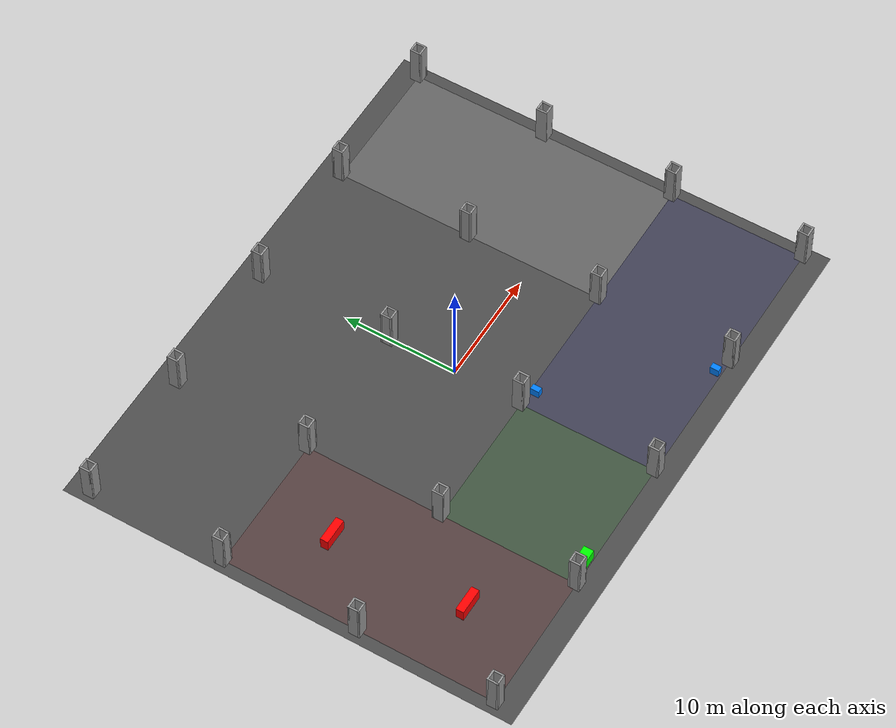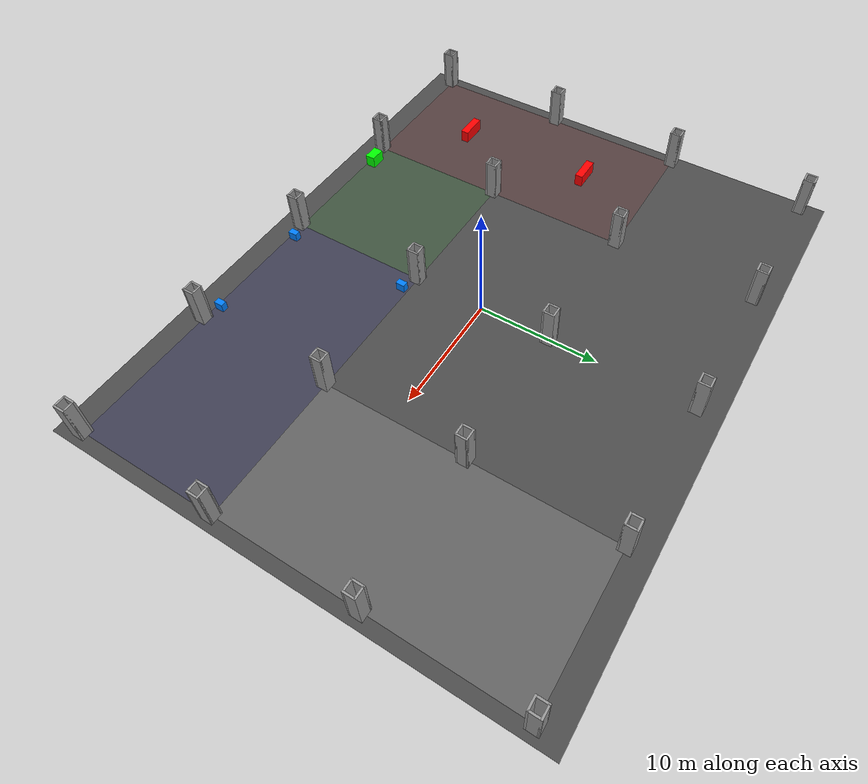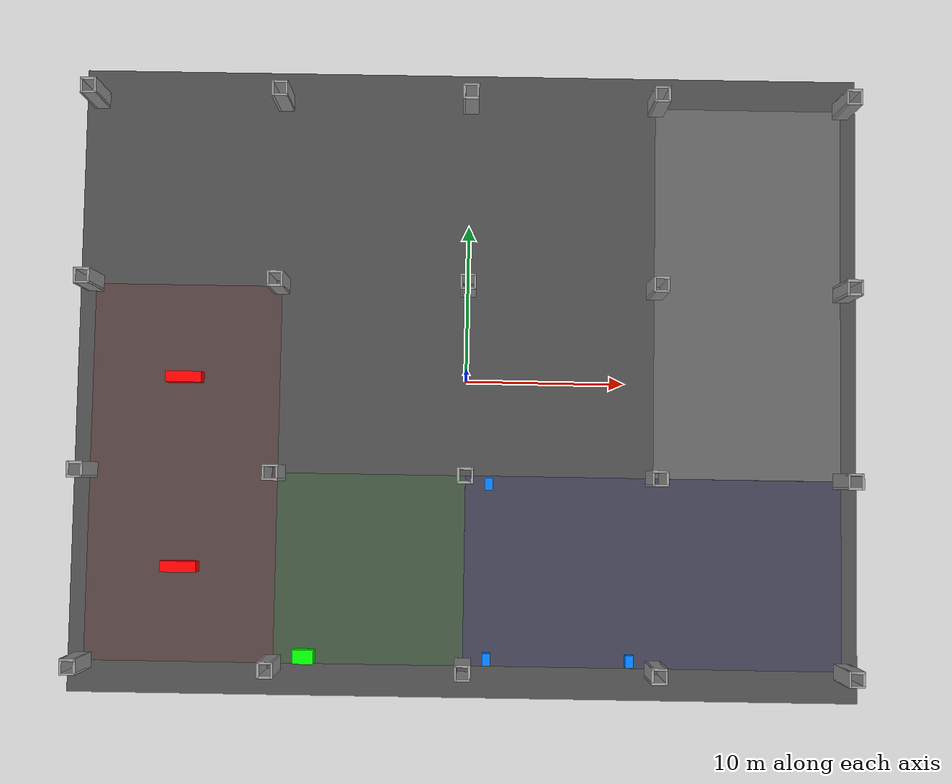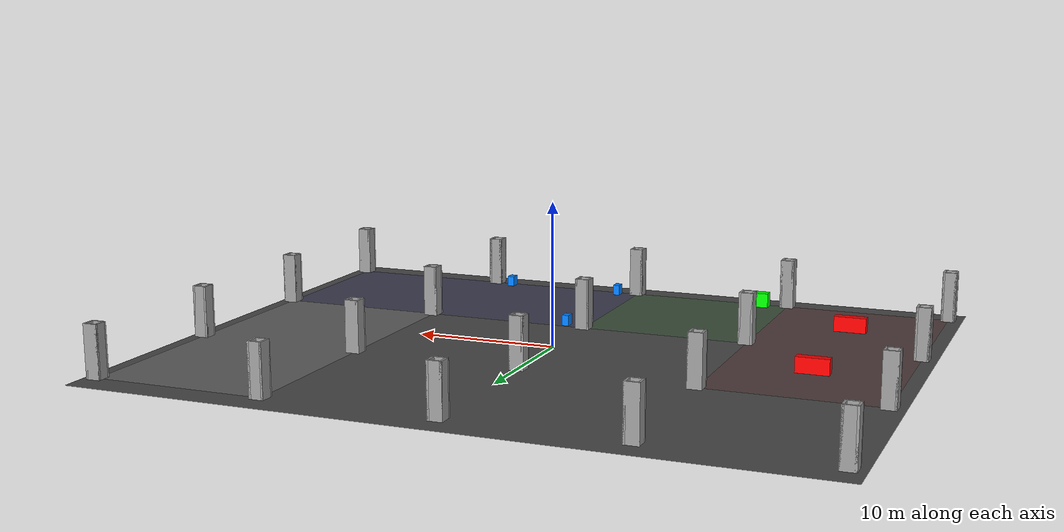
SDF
<sdf version="1.6">
 <world name="anchor_plant_world">
  <plugin filename="ignition-gazebo-collada-world-exporter-system" name="ignition::gazebo::systems::ColladaWorldExporter"/>
  <scene><ambient>0.4 0.4 0.4 1</ambient><background>0.7 0.7 0.7 1</background><shadows>1</shadows></scene>
  <gravity>0 0 -9.8</gravity>
  <magnetic_field>6e-06 2.3e-05 -4.2e-05</magnetic_field>
  <atmosphere type="adiabatic"/>
  <physics name="default_physics" default="0" type="ode">
   <max_step_size>0.001</max_step_size>
   <real_time_factor>1</real_time_factor>
   <real_time_update_rate>1000</real_time_update_rate>
  </physics>
  <light type="directional" name="sun">
   <pose>0 0 10 0 0 0</pose>
   <diffuse>0.8 0.8 0.8 1</diffuse>
   <specular>0.2 0.2 0.2 1</specular>
   <attenuation>
    <range>1000</range>
    <constant>0.9</constant>
    <linear>0.01</linear>
    <quadratic>0.0001</quadratic>
   </attenuation>
   <direction>-0.5 0.1 -0.9</direction>
  </light>
  <include><uri>model://ground_plane_anchor</uri></include>
  <include>
   <uri>model://ground_plane_ws1</uri>
   <static>1</static>
   <pose>-18 -6 0.001 0 0 0</pose>
   <name>ws_1_area</name>
  </include>
  <include>
   <uri>model://ground_plane_ws2</uri>
   <static>1</static>
   <pose>-6 -12 0.001 0 0 0</pose>
   <name>ws_2_area</name>
  </include>
  <include>
   <uri>model://ground_plane_ws3</uri>
   <static>1</static>
   <pose>12 -12 0.001 0 0 1.57</pose>
   <name>ws_3_area</name>
  </include>
  <include>
   <uri>model://ground_plane_inspection_area</uri>
   <static>1</static>
   <pose>18 6 0.001 0 0 0</pose>
   <name>ws_4_0</name>
  </include>
  <include>
   <uri>model://plant_column</uri>
   <name>col_0</name>
   <pose>-24 18 0 0 0 0</pose>
   <static>1</static>
  </include>
  <include>
   <uri>model://plant_column</uri>
   <name>col_1</name>
   <pose>-12 18 0 0 0 0</pose>
   <static>1</static>
  </include>
  <include>
   <uri>model://plant_column</uri>
   <name>col_2</name>
   <pose>0 18 0 0 0 0</pose>
   <static>1</static>
  </include>
  <include>
   <uri>model://plant_column</uri>
   <name>col_3</name>
   <pose>12 18 0 0 0 0</pose>
   <static>1</static>
  </include>
  <include>
   <uri>model://plant_column</uri>
   <name>col_4</name>
   <pose>24 18 0 0 0 0</pose>
   <static>1</static>
  </include>
  <include>
   <uri>model://plant_column</uri>
   <name>col_5</name>
   <pose>-24 6 0 0 0 0</pose>
   <static>1</static>
  </include>
  <include>
   <uri>model://plant_column</uri>
   <name>col_6</name>
   <pose>-12 6 0 0 0 0</pose>
   <static>1</static>
  </include>
  <include><uri>model://plant_column</uri><name>col_7</name><pose>0 6 0 0 0 0</pose><static>1</static></include>
  <include>
   <uri>model://plant_column</uri>
   <name>col_8</name>
   <pose>12 6 0 0 0 0</pose>
   <static>1</static>
  </include>
  <include>
   <uri>model://plant_column</uri>
   <name>col_9</name>
   <pose>24 6 0 0 0 0</pose>
   <static>1</static>
  </include>
  <include>
   <uri>model://plant_column</uri>
   <name>col_10</name>
   <pose>-24 -6 0 0 0 0</pose>
   <static>1</static>
  </include>
  <include>
   <uri>model://plant_column</uri>
   <name>col_11</name>
   <pose>-12 -6 0 0 0 0</pose>
   <static>1</static>
  </include>
  <include>
   <uri>model://plant_column</uri>
   <name>col_12</name>
   <pose>0 -6 0 0 0 0</pose>
   <static>1</static>
  </include>
  <include>
   <uri>model://plant_column</uri>
   <name>col_13</name>
   <pose>12 -6 0 0 0 0</pose>
   <static>1</static>
  </include>
  <include>
   <uri>model://plant_column</uri>
   <name>col_14</name>
   <pose>24 -6 0 0 0 0</pose>
   <static>1</static>
  </include>
  <include>
   <uri>model://plant_column</uri>
   <name>col_15</name>
   <pose>-24 -18 0 0 0 0</pose>
   <static>1</static>
  </include>
  <include>
   <uri>model://plant_column</uri>
   <name>col_16</name>
   <pose>-12 -18 0 0 0 0</pose>
   <static>1</static>
  </include>
  <include>
   <uri>model://plant_column</uri>
   <name>col_17</name>
   <pose>0 -18 0 0 0 0</pose>
   <static>1</static>
  </include>
  <include>
   <uri>model://plant_column</uri>
   <name>col_18</name>
   <pose>12 -18 0 0 0 0</pose>
   <static>1</static>
  </include>
  <include>
   <uri>model://plant_column</uri>
   <name>col_19</name>
   <pose>24 -18 0 0 0 0</pose>
   <static>1</static>
  </include>
  <include>
   <uri>model://mega_stitch</uri>
   <static>1</static>
   <pose>-18 0 0 0 0 0</pose>
   <name>ws_1_0</name>
  </include>
  <include>
   <uri>model://mega_stitch</uri>
   <static>1</static>
   <pose>-18 -12 0 0 0 0</pose>
   <name>ws_1_1</name>
  </include>
  <include>
   <uri>model://rf_welder</uri>
   <static>1</static>
   <pose>-10 -17.5 0 0 0 0</pose>
   <name>ws_2_0</name>
  </include>
  <include>
   <uri>model://sewing_short_arm</uri>
   <static>1</static>
   <pose>1.5 -6.5 0 0 0 1.57</pose>
   <name>ws_3_0</name>
  </include>
  <include>
   <uri>model://sewing_short_arm</uri>
   <static>1</static>
   <pose>1.5 -17.5 0 0 0 1.57</pose>
   <name>ws_3_1</name>
  </include>
  <include>
   <uri>model://sewing_short_arm</uri>
   <static>1</static>
   <pose>10.5 -17.5 0 0 0 1.57</pose>
   <name>ws_3_2</name>
  </include>
 </world>
</sdf>

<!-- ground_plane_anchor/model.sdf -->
<sdf version='1.6'>
  <model name='ground_plane_anchor'>
    <link name='link'>

      <self_collide>0</self_collide>
      <enable_wind>0</enable_wind>
      <kinematic>0</kinematic>
      <pose>0 0 0 0 -0 0</pose>
      <gravity>1</gravity>

      <visual name='visual'>
        <geometry>
          <plane>
            <normal>0 0 1</normal>
            <size>50 40</size>
          </plane>
        </geometry>

        <material>
          <ambient>0.3 0.3 0.3 1</ambient>
          <diffuse>0.3 0.3 0.3 1</diffuse>
          <specular>0.3 0.3 0.3 1</specular>
          <emissive>0 0 0 1</emissive>
        </material>

        <pose>0 0 0 0 -0 0</pose>

        <transparency>0.8</transparency>

        <cast_shadows>0</cast_shadows>

      </visual>

      <collision name='collision'>

        <geometry>
          <plane>
            <normal>0 0 1</normal>
            <size>50 40</size>
          </plane>
        </geometry>

        <surface>

          <friction>
            <ode>
              <mu>100</mu>
              <mu2>50</mu2>
              <fdir1>0 0 0</fdir1>
              <slip1>0</slip1>
              <slip2>0</slip2>
            </ode>
            <torsional>
              <coefficient>1</coefficient>
              <patch_radius>0</patch_radius>
              <surface_radius>0</surface_radius>
              <use_patch_radius>1</use_patch_radius>
              <ode>
                <slip>0</slip>
              </ode>
            </torsional>
          </friction>

        </surface>

      </collision>

    </link>

    <static>1</static>

  </model>
</sdf>

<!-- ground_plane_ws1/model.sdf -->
<sdf version='1.6'>
  <model name='ground_plane_ws1'>
    <link name='link'>

      <self_collide>0</self_collide>
      <enable_wind>0</enable_wind>
      <kinematic>0</kinematic>
      <pose>0 0 0 0 -0 0</pose>
      <gravity>1</gravity>

      <visual name='visual'>
        <geometry>
          <plane>
            <normal>0 0 1</normal>
            <size>12 24</size>
          </plane>
        </geometry>

        <material>
          <ambient>0.5 0.1 0.1 1</ambient>
          <diffuse>0.5 0.1 0.1 1</diffuse>
          <specular>0.5 0.1 0.1 1</specular>
          <emissive>0 0 0 1</emissive>
        </material>

        <pose>0 0 0 0 -0 0</pose>

        <transparency>0.8</transparency>

        <cast_shadows>0</cast_shadows>

      </visual>

    </link>

    <static>1</static>

  </model>
</sdf>

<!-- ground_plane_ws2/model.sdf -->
<sdf version='1.6'>
  <model name='ground_plane_ws2'>
    <link name='link'>

      <self_collide>0</self_collide>
      <enable_wind>0</enable_wind>
      <kinematic>0</kinematic>
      <pose>0 0 0 0 -0 0</pose>
      <gravity>1</gravity>

      <visual name='visual'>
        <geometry>
          <plane>
            <normal>0 0 1</normal>
            <size>12 12</size>
          </plane>
        </geometry>

        <material>
          <ambient>0.1 0.5 0.1 1</ambient>
          <diffuse>0.1 0.5 0.1 1</diffuse>
          <specular>0.1 0.5 0.1 1</specular>
          <emissive>0 0 0 1</emissive>
        </material>

        <pose>0 0 0 0 -0 0</pose>

        <transparency>0.8</transparency>

        <cast_shadows>0</cast_shadows>

      </visual>

    </link>

    <static>1</static>

  </model>
</sdf>

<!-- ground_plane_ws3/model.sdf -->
<sdf version='1.6'>
  <model name='ground_plane_ws3'>
    <link name='link'>

      <self_collide>0</self_collide>
      <enable_wind>0</enable_wind>
      <kinematic>0</kinematic>
      <pose>0 0 0 0 -0 0</pose>
      <gravity>1</gravity>

      <visual name='visual'>
        <geometry>
          <plane>
            <normal>0 0 1</normal>
            <size>12 24</size>
          </plane>
        </geometry>

        <material>
          <ambient>0.1 0.1 0.5 1</ambient>
          <diffuse>0.1 0.1 0.5 1</diffuse>
          <specular>0.1 0.1 0.5 1</specular>
          <emissive>0 0 0 1</emissive>
        </material>

        <pose>0 0 0 0 -0 0</pose>

        <transparency>0.8</transparency>

        <cast_shadows>0</cast_shadows>

      </visual>

    </link>

    <static>1</static>

  </model>
</sdf>

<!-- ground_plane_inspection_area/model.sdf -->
<sdf version='1.6'>
  <model name='ground_plane_inspection_area'>
    <link name='link'>

      <self_collide>0</self_collide>
      <enable_wind>0</enable_wind>
      <kinematic>0</kinematic>
      <pose>0 0 0 0 -0 0</pose>
      <gravity>1</gravity>

      <visual name='visual'>
        <geometry>
          <plane>
            <normal>0 0 1</normal>
            <size>12 24</size>
          </plane>
        </geometry>

        <material>
          <ambient>0.8 0.8 0.8 1</ambient>
          <diffuse>0.8 0.8 0.8 1</diffuse>
          <specular>0.8 0.8 0.8 1</specular>
          <emissive>0 0 0 1</emissive>
        </material>

        <pose>0 0 0 0 -0 0</pose>

        <transparency>0.8</transparency>

        <cast_shadows>0</cast_shadows>

      </visual>

    </link>

    <static>1</static>

  </model>
</sdf>

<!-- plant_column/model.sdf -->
<sdf version='1.6'>
  <model name='plant_column'>
    <pose frame=''>0.225 -5.435 0 0 -0 0</pose>
    <link name='Wall_0'>
      <collision name='Wall_0_Collision'>
        <geometry>
          <box>
            <size>1 0.15 3.65</size>
          </box>
        </geometry>
        <pose frame=''>0 0 1.825 0 -0 0</pose>
      </collision>
      <visual name='Wall_0_Visual'>
        <pose frame=''>0 0 1.825 0 -0 0</pose>
        <geometry>
          <box>
            <size>1 0.15 3.65</size>
          </box>
        </geometry>
        <material>
          <script>
            <uri>file://media/materials/scripts/gazebo.material</uri>
            <name>Gazebo/Grey</name>
          </script>
          <ambient>1 1 1 0.8</ambient>
          <diffuse>1 1 1 0.8</diffuse>
          <specular>0.01 0.01 0.01 0.8</specular>
          <emissive>0 0 0 0.8</emissive>
        </material>
        <meta>
          <layer>0</layer>
        </meta>
      </visual>
      <pose frame=''>0 0.425 0 0 -0 0</pose>
    </link>
    <link name='Wall_1'>
      <collision name='Wall_1_Collision'>
        <geometry>
          <box>
            <size>1 0.15 3.65</size>
          </box>
        </geometry>
        <pose frame=''>0 0 1.825 0 -0 0</pose>
      </collision>
      <visual name='Wall_1_Visual'>
        <pose frame=''>0 0 1.825 0 -0 0</pose>
        <geometry>
          <box>
            <size>1 0.15 3.65</size>
          </box>
        </geometry>
        <material>
          <script>
            <uri>file://media/materials/scripts/gazebo.material</uri>
            <name>Gazebo/Grey</name>
          </script>
          <ambient>1 1 1 0.8</ambient>
          <diffuse>1 1 1 0.8</diffuse>
          <specular>0.01 0.01 0.01 0.8</specular>
          <emissive>0 0 0 0.8</emissive>
        </material>
        <meta>
          <layer>0</layer>
        </meta>
      </visual>
      <pose frame=''>0.425 0 0 0 -0 -1.5708</pose>
    </link>
    <link name='Wall_2'>
      <collision name='Wall_2_Collision'>
        <geometry>
          <box>
            <size>1 0.15 3.65</size>
          </box>
        </geometry>
        <pose frame=''>0 0 1.825 0 -0 0</pose>
      </collision>
      <visual name='Wall_2_Visual'>
        <pose frame=''>0 0 1.825 0 -0 0</pose>
        <geometry>
          <box>
            <size>1 0.15 3.65</size>
          </box>
        </geometry>
        <material>
          <script>
            <uri>file://media/materials/scripts/gazebo.material</uri>
            <name>Gazebo/Grey</name>
          </script>
          <ambient>1 1 1 0.8</ambient>
          <diffuse>1 1 1 0.8</diffuse>
          <specular>0.01 0.01 0.01 0.8</specular>
          <emissive>0 0 0 0.8</emissive>
        </material>
        <meta>
          <layer>0</layer>
        </meta>
      </visual>
      <pose frame=''>0 -0.425 0 0 -0 3.14159</pose>
    </link>
    <link name='Wall_3'>
      <collision name='Wall_3_Collision'>
        <geometry>
          <box>
            <size>1 0.15 3.65</size>
          </box>
        </geometry>
        <pose frame=''>0 0 1.825 0 -0 0</pose>
      </collision>
      <visual name='Wall_3_Visual'>
        <pose frame=''>0 0 1.825 0 -0 0</pose>
        <geometry>
          <box>
            <size>1 0.15 3.65</size>
          </box>
        </geometry>
        <material>
          <script>
            <uri>file://media/materials/scripts/gazebo.material</uri>
            <name>Gazebo/Grey</name>
          </script>
          <ambient>1 1 1 0.8</ambient>
          <diffuse>1 1 1 0.8</diffuse>
          <specular>0.01 0.01 0.01 0.8</specular>
          <emissive>0 0 0 0.8</emissive>
        </material>
        <meta>
          <layer>0</layer>
        </meta>
      </visual>
      <pose frame=''>-0.425 0 0 0 -0 1.5708</pose>
    </link>
    <static>1</static>
  </model>
</sdf>

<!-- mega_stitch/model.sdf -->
<sdf version='1.6'>
  <model name='mega_stitch'>
    <link name='link'>
      <inertial>
        <mass>200</mass>
        <inertia>
          <ixx>110.166667</ixx>
          <ixy>0</ixy>
          <ixz>0</ixz>
          <iyy>110.166667</iyy>
          <iyz>0</iyz>
          <izz>110.166667</izz>
        </inertia>
        <pose>0 0 0.5461 0 -0 0</pose>
      </inertial>
      <self_collide>0</self_collide>
      <enable_wind>0</enable_wind>
      <kinematic>0</kinematic>
      <pose>0 0 0 0 -0 0</pose>
      <gravity>1</gravity>
      <visual name='visual'>
        <geometry>
          <box>
            <size>2.286 0.6858 1.0922</size>
          </box>
        </geometry>
        <material>
          <script>
            <name>Gazebo/Grey</name>
            <uri>file://media/materials/scripts/gazebo.material</uri>
          </script>
          <shader type='pixel'>
            <normal_map>__default__</normal_map>
          </shader>
          <ambient>1.0 0.0 0 1</ambient>
          <diffuse>1.0 0.0 0 1</diffuse>
          <specular>0.01 0.01 0.01 1</specular>
          <emissive>0 0 0 1</emissive>
        </material>
        <pose>0 0 0.5461 0 -0 0</pose>
        <transparency>0</transparency>
        <cast_shadows>1</cast_shadows>
      </visual>
      <collision name='collision'>
        <laser_retro>0</laser_retro>
        <max_contacts>10</max_contacts>
        <pose>0 0 0.5461 0 -0 0</pose>
        <geometry>
          <box>
            <size>2.286 0.6858 1.0922</size>
          </box>
        </geometry>
        <surface>
          <friction>
            <ode>
              <mu>100</mu>
              <mu2>50</mu2>
              <fdir1>0 0 0</fdir1>
              <slip1>0</slip1>
              <slip2>0</slip2>
            </ode>
            <torsional>
              <coefficient>1</coefficient>
              <patch_radius>0</patch_radius>
              <surface_radius>0</surface_radius>
              <use_patch_radius>1</use_patch_radius>
              <ode>
                <slip>0</slip>
              </ode>
            </torsional>
          </friction>
          <bounce>
            <restitution_coefficient>0</restitution_coefficient>
            <threshold>1e+06</threshold>
          </bounce>
          <contact>
            <collide_without_contact>0</collide_without_contact>
            <collide_without_contact_bitmask>1</collide_without_contact_bitmask>
            <collide_bitmask>1</collide_bitmask>
            <ode>
              <soft_cfm>0</soft_cfm>
              <soft_erp>0.2</soft_erp>
              <kp>1e+13</kp>
              <kd>1</kd>
              <max_vel>0.01</max_vel>
              <min_depth>0</min_depth>
            </ode>
            <bullet>
              <split_impulse>1</split_impulse>
              <split_impulse_penetration_threshold>-0.01</split_impulse_penetration_threshold>
              <soft_cfm>0</soft_cfm>
              <soft_erp>0.2</soft_erp>
              <kp>1e+13</kp>
              <kd>1</kd>
            </bullet>
          </contact>
        </surface>
      </collision>
    </link>
    <static>0</static>
    <allow_auto_disable>1</allow_auto_disable>
  </model>
</sdf>

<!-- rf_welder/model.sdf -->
<sdf version='1.6'>
  <model name='rf_welder'>
    <link name='link'>
      <inertial>
        <mass>500</mass>
        <inertia>
          <ixx>510.166667</ixx>
          <ixy>0</ixy>
          <ixz>0</ixz>
          <iyy>510.166667</iyy>
          <iyz>0</iyz>
          <izz>510.166667</izz>
        </inertia>
        <pose>0 0 0.5334 0 -0 0</pose>
      </inertial>
      <self_collide>0</self_collide>
      <enable_wind>0</enable_wind>
      <kinematic>0</kinematic>
      <pose>0 0 0 0 -0 0</pose>
      <gravity>1</gravity>
      <visual name='visual'>
        <geometry>
          <box>
            <size>1.3208 0.8636 1.0668</size>
          </box>
        </geometry>
        <material>
          <script>
            <name>Gazebo/Grey</name>
            <uri>file://media/materials/scripts/gazebo.material</uri>
          </script>
          <shader type='pixel'>
            <normal_map>__default__</normal_map>
          </shader>
          <ambient>0.0 1.0 0 1</ambient>
          <diffuse>0.0 1.0 0 1</diffuse>
          <specular>0.01 0.01 0.01 1</specular>
          <emissive>0 0 0 1</emissive>
        </material>
        <pose>0 0 0.5334 0 -0 0</pose>
        <transparency>0</transparency>
        <cast_shadows>1</cast_shadows>
      </visual>
      <collision name='collision'>
        <laser_retro>0</laser_retro>
        <max_contacts>10</max_contacts>
        <pose>0 0 0.5334 0 -0 0</pose>
        <geometry>
          <box>
            <size>1.3208 0.8636 1.0668</size>
          </box>
        </geometry>
        <surface>
          <friction>
            <ode>
              <mu>100</mu>
              <mu2>50</mu2>
              <fdir1>0 0 0</fdir1>
              <slip1>0</slip1>
              <slip2>0</slip2>
            </ode>
            <torsional>
              <coefficient>1</coefficient>
              <patch_radius>0</patch_radius>
              <surface_radius>0</surface_radius>
              <use_patch_radius>1</use_patch_radius>
              <ode>
                <slip>0</slip>
              </ode>
            </torsional>
          </friction>
          <bounce>
            <restitution_coefficient>0</restitution_coefficient>
            <threshold>1e+06</threshold>
          </bounce>
          <contact>
            <collide_without_contact>0</collide_without_contact>
            <collide_without_contact_bitmask>1</collide_without_contact_bitmask>
            <collide_bitmask>1</collide_bitmask>
            <ode>
              <soft_cfm>0</soft_cfm>
              <soft_erp>0.2</soft_erp>
              <kp>1e+13</kp>
              <kd>1</kd>
              <max_vel>0.01</max_vel>
              <min_depth>0</min_depth>
            </ode>
            <bullet>
              <split_impulse>1</split_impulse>
              <split_impulse_penetration_threshold>-0.01</split_impulse_penetration_threshold>
              <soft_cfm>0</soft_cfm>
              <soft_erp>0.2</soft_erp>
              <kp>1e+13</kp>
              <kd>1</kd>
            </bullet>
          </contact>
        </surface>
      </collision>
    </link>
    <static>0</static>
    <allow_auto_disable>1</allow_auto_disable>
  </model>
</sdf>

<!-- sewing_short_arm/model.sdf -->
<sdf version='1.6'>
  <model name='sewing_short_arm'>
    <link name='link'>
      <inertial>
        <mass>50</mass>
        <inertia>
          <ixx>50.166667</ixx>
          <ixy>0</ixy>
          <ixz>0</ixz>
          <iyy>50.166667</iyy>
          <iyz>0</iyz>
          <izz>50.166667</izz>
        </inertia>
        <pose>0 0 0.381 0 -0 0</pose>
      </inertial>
      <self_collide>0</self_collide>
      <enable_wind>0</enable_wind>
      <kinematic>0</kinematic>
      <pose>0 0 0 0 -0 0</pose>
      <gravity>1</gravity>
      <visual name='visual'>
        <geometry>
          <box>
            <size>0.762 0.508 0.762</size>
          </box>
        </geometry>
        <material>
          <script>
            <name>Gazebo/Grey</name>
            <uri>file://media/materials/scripts/gazebo.material</uri>
          </script>
          <shader type='pixel'>
            <normal_map>__default__</normal_map>
          </shader>
          <ambient>0.0 0.5 1.0 1</ambient>
          <diffuse>0.0 0.5 1.0 1</diffuse>
          <specular>0.01 0.01 0.01 1</specular>
          <emissive>0 0 0 1</emissive>
        </material>
        <pose>0 0 0.381 0 -0 0</pose>
        <transparency>0</transparency>
        <cast_shadows>1</cast_shadows>
      </visual>
      <collision name='collision'>
        <laser_retro>0</laser_retro>
        <max_contacts>10</max_contacts>
        <pose>0 0 0.381 0 -0 0</pose>
        <geometry>
          <box>
            <size>0.762 0.508 0.762</size>
          </box>
        </geometry>
        <surface>
          <friction>
            <ode>
              <mu>100</mu>
              <mu2>50</mu2>
              <fdir1>0 0 0</fdir1>
              <slip1>0</slip1>
              <slip2>0</slip2>
            </ode>
            <torsional>
              <coefficient>1</coefficient>
              <patch_radius>0</patch_radius>
              <surface_radius>0</surface_radius>
              <use_patch_radius>1</use_patch_radius>
              <ode>
                <slip>0</slip>
              </ode>
            </torsional>
          </friction>
          <bounce>
            <restitution_coefficient>0</restitution_coefficient>
            <threshold>1e+06</threshold>
          </bounce>
          <contact>
            <collide_without_contact>0</collide_without_contact>
            <collide_without_contact_bitmask>1</collide_without_contact_bitmask>
            <collide_bitmask>1</collide_bitmask>
            <ode>
              <soft_cfm>0</soft_cfm>
              <soft_erp>0.2</soft_erp>
              <kp>1e+13</kp>
              <kd>1</kd>
              <max_vel>0.01</max_vel>
              <min_depth>0</min_depth>
            </ode>
            <bullet>
              <split_impulse>1</split_impulse>
              <split_impulse_penetration_threshold>-0.01</split_impulse_penetration_threshold>
              <soft_cfm>0</soft_cfm>
              <soft_erp>0.2</soft_erp>
              <kp>1e+13</kp>
              <kd>1</kd>
            </bullet>
          </contact>
        </surface>
      </collision>
    </link>
    <static>0</static>
    <allow_auto_disable>1</allow_auto_disable>
  </model>
</sdf>
